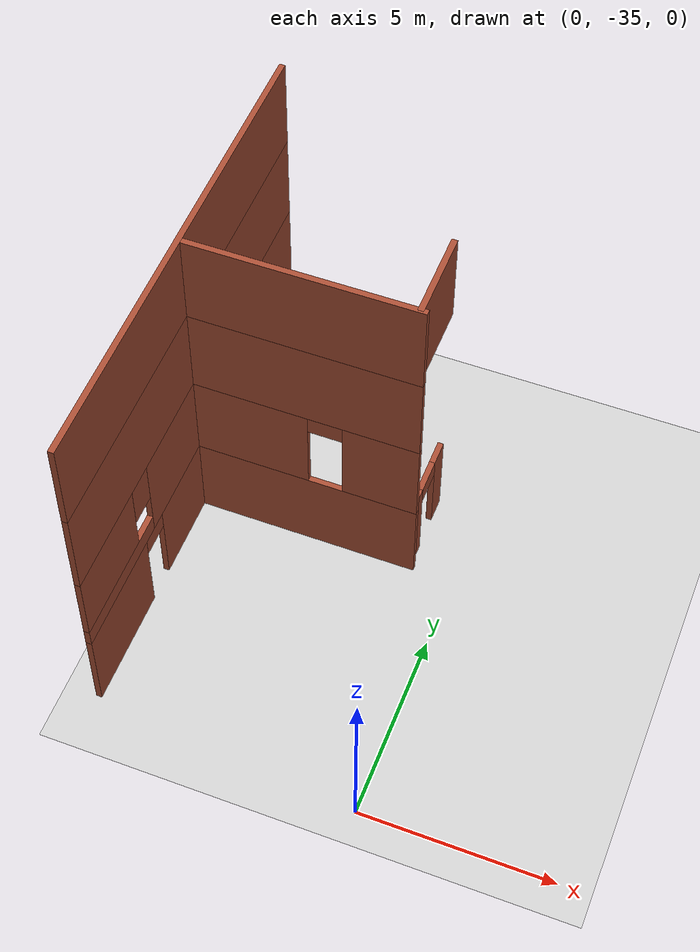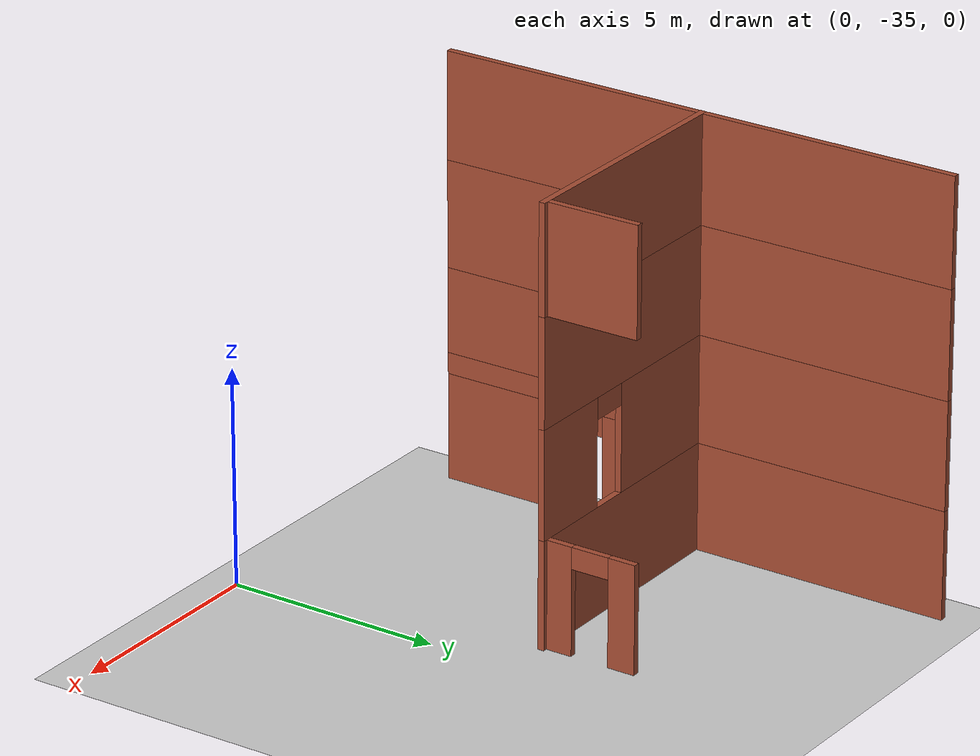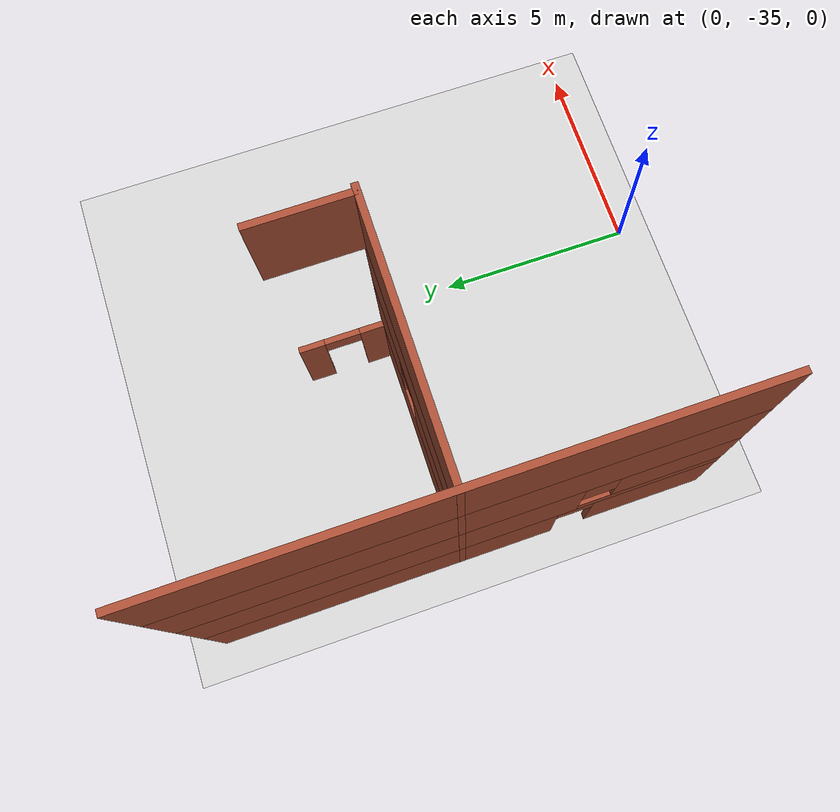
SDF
<sdf version="1.7">
 <world name="default">
  <model name="ground_plane">
   <static>1</static>
   <link name="link">
    <collision name="collision">
     <geometry><plane><normal>0 0 1</normal><size>300 300</size></plane></geometry>
     <surface>
      <contact><collide_bitmask>65535</collide_bitmask></contact>
      <friction><ode><mu>100</mu><mu2>50</mu2></ode></friction>
     </surface>
    </collision>
    <visual name="visual">
     <cast_shadows>0</cast_shadows>
     <geometry><plane><normal>0 0 1</normal><size>300 300</size></plane></geometry>
     <material>
      <script><uri>file://media/materials/scripts/gazebo.material</uri><name>Gazebo/Grey</name></script>
     </material>
    </visual>
   </link>
  </model>
  <model name="Drone_House_0">
   <pose>0.722097 -29.4245 0 0 -0 0</pose>
   <link name="Wall_106">
    <collision name="Wall_106_Collision">
     <geometry><box><size>12.5 0.15 2.5</size></box></geometry>
     <pose>0 0 1.25 0 -0 0</pose>
    </collision>
    <visual name="Wall_106_Visual">
     <pose>0 0 1.25 0 -0 0</pose>
     <geometry><box><size>12.5 0.15 2.5</size></box></geometry>
     <material>
      <script><uri>file://media/materials/scripts/gazebo.material</uri><name>Gazebo/Bricks</name></script>
      <ambient>1 1 1 1</ambient>
     </material>
     <meta><layer>3</layer></meta>
    </visual>
    <pose>-7.72394 1.325 7.5 0 -0 -1.5708</pose>
   </link>
   <link name="Wall_108">
    <collision name="Wall_108_Collision">
     <geometry><box><size>6 0.15 2.5</size></box></geometry>
     <pose>0 0 1.25 0 -0 0</pose>
    </collision>
    <visual name="Wall_108_Visual">
     <pose>0 0 1.25 0 -0 0</pose>
     <geometry><box><size>6 0.15 2.5</size></box></geometry>
     <material>
      <script><uri>file://media/materials/scripts/gazebo.material</uri><name>Gazebo/Bricks</name></script>
      <ambient>1 1 1 1</ambient>
     </material>
     <meta><layer>3</layer></meta>
    </visual>
    <pose>-4.80107 1.443 7.5 0 -0 0</pose>
   </link>
   <link name="Wall_115">
    <collision name="Wall_115_Collision">
     <geometry><box><size>2.25 0.15 2.5</size></box></geometry>
     <pose>0 0 1.25 0 -0 0</pose>
    </collision>
    <visual name="Wall_115_Visual">
     <pose>0 0 1.25 0 -0 0</pose>
     <geometry><box><size>2.25 0.15 2.5</size></box></geometry>
     <material>
      <script><uri>file://media/materials/scripts/gazebo.material</uri><name>Gazebo/Bricks</name></script>
      <ambient>1 1 1 1</ambient>
     </material>
     <meta><layer>3</layer></meta>
    </visual>
    <pose>-1.97394 2.55 7.5 0 -0 -1.5708</pose>
   </link>
   <link name="Wall_16">
    <pose>-1.97394 2.55 0 0 -0 -1.5708</pose>
    <visual name="Wall_16_Visual_0">
     <pose>-0.800315 0 1.25 0 -0 0</pose>
     <geometry><box><size>0.649369 0.15 2.5</size></box></geometry>
     <material>
      <script><uri>file://media/materials/scripts/gazebo.material</uri><name>Gazebo/Bricks</name></script>
      <ambient>1 1 1 1</ambient>
     </material>
     <meta><layer>0</layer></meta>
    </visual>
    <collision name="Wall_16_Collision_0">
     <geometry><box><size>0.649369 0.15 2.5</size></box></geometry>
     <pose>-0.800315 0 1.25 0 -0 0</pose>
    </collision>
    <visual name="Wall_16_Visual_1">
     <pose>0.774685 0 1.25 0 -0 0</pose>
     <geometry><box><size>0.700631 0.15 2.5</size></box></geometry>
     <material>
      <script><uri>file://media/materials/scripts/gazebo.material</uri><name>Gazebo/Bricks</name></script>
      <ambient>1 1 1 1</ambient>
     </material>
     <meta><layer>0</layer></meta>
    </visual>
    <collision name="Wall_16_Collision_1">
     <geometry><box><size>0.700631 0.15 2.5</size></box></geometry>
     <pose>0.774685 0 1.25 0 -0 0</pose>
    </collision>
    <visual name="Wall_16_Visual_2">
     <pose>-0.025631 0 2.25 0 -0 0</pose>
     <geometry><box><size>0.9 0.15 0.5</size></box></geometry>
     <material>
      <script><uri>file://media/materials/scripts/gazebo.material</uri><name>Gazebo/Bricks</name></script>
      <ambient>1 1 1 1</ambient>
     </material>
     <meta><layer>0</layer></meta>
    </visual>
    <collision name="Wall_16_Collision_2">
     <geometry><box><size>0.9 0.15 0.5</size></box></geometry>
     <pose>-0.025631 0 2.25 0 -0 0</pose>
    </collision>
   </link>
   <link name="Wall_35">
    <pose>-7.72394 1.325 2.5 0 -0 -1.5708</pose>
    <visual name="Wall_35_Visual_0">
     <pose>-1.7824 0 1.25 0 -0 0</pose>
     <geometry><box><size>8.9352 0.15 2.5</size></box></geometry>
     <material>
      <script><uri>file://media/materials/scripts/gazebo.material</uri><name>Gazebo/Bricks</name></script>
      <ambient>1 1 1 1</ambient>
     </material>
     <meta><layer>1</layer></meta>
    </visual>
    <collision name="Wall_35_Collision_0">
     <geometry><box><size>8.9352 0.15 2.5</size></box></geometry>
     <pose>-1.7824 0 1.25 0 -0 0</pose>
    </collision>
    <visual name="Wall_35_Visual_1">
     <pose>4.4676 0 0.25 0 -0 0</pose>
     <geometry><box><size>3.5648 0.15 0.5</size></box></geometry>
     <material>
      <script><uri>file://media/materials/scripts/gazebo.material</uri><name>Gazebo/Bricks</name></script>
      <ambient>1 1 1 1</ambient>
     </material>
     <meta><layer>1</layer></meta>
    </visual>
    <collision name="Wall_35_Collision_1">
     <geometry><box><size>3.5648 0.15 0.5</size></box></geometry>
     <pose>4.4676 0 0.25 0 -0 0</pose>
    </collision>
    <visual name="Wall_35_Visual_2">
     <pose>4.8676 0 1.5 0 -0 0</pose>
     <geometry><box><size>2.7648 0.15 2</size></box></geometry>
     <material>
      <script><uri>file://media/materials/scripts/gazebo.material</uri><name>Gazebo/Bricks</name></script>
      <ambient>1 1 1 1</ambient>
     </material>
     <meta><layer>1</layer></meta>
    </visual>
    <collision name="Wall_35_Collision_2">
     <geometry><box><size>2.7648 0.15 2</size></box></geometry>
     <pose>4.8676 0 1.5 0 -0 0</pose>
    </collision>
    <visual name="Wall_35_Visual_3">
     <pose>3.0852 0 1.9 0 -0 0</pose>
     <geometry><box><size>0.8 0.15 1.2</size></box></geometry>
     <material>
      <script><uri>file://media/materials/scripts/gazebo.material</uri><name>Gazebo/Bricks</name></script>
      <ambient>1 1 1 1</ambient>
     </material>
     <meta><layer>1</layer></meta>
    </visual>
    <collision name="Wall_35_Collision_3">
     <geometry><box><size>0.8 0.15 1.2</size></box></geometry>
     <pose>3.0852 0 1.9 0 -0 0</pose>
    </collision>
   </link>
   <link name="Wall_37">
    <pose>-4.80107 1.443 2.5 0 -0 0</pose>
    <visual name="Wall_37_Visual_0">
     <pose>-1.43248 0 1.25 0 -0 0</pose>
     <geometry><box><size>3.13503 0.15 2.5</size></box></geometry>
     <material>
      <script><uri>file://media/materials/scripts/gazebo.material</uri><name>Gazebo/Bricks</name></script>
      <ambient>1 1 1 1</ambient>
     </material>
     <meta><layer>1</layer></meta>
    </visual>
    <collision name="Wall_37_Collision_0">
     <geometry><box><size>3.13503 0.15 2.5</size></box></geometry>
     <pose>-1.43248 0 1.25 0 -0 0</pose>
    </collision>
    <visual name="Wall_37_Visual_1">
     <pose>2.01752 0 1.25 0 -0 0</pose>
     <geometry><box><size>1.96497 0.15 2.5</size></box></geometry>
     <material>
      <script><uri>file://media/materials/scripts/gazebo.material</uri><name>Gazebo/Bricks</name></script>
      <ambient>1 1 1 1</ambient>
     </material>
     <meta><layer>1</layer></meta>
    </visual>
    <collision name="Wall_37_Collision_1">
     <geometry><box><size>1.96497 0.15 2.5</size></box></geometry>
     <pose>2.01752 0 1.25 0 -0 0</pose>
    </collision>
    <visual name="Wall_37_Visual_2">
     <pose>0.585032 0 2.25 0 -0 0</pose>
     <geometry><box><size>0.9 0.15 0.5</size></box></geometry>
     <material>
      <script><uri>file://media/materials/scripts/gazebo.material</uri><name>Gazebo/Bricks</name></script>
      <ambient>1 1 1 1</ambient>
     </material>
     <meta><layer>1</layer></meta>
    </visual>
    <collision name="Wall_37_Collision_2">
     <geometry><box><size>0.9 0.15 0.5</size></box></geometry>
     <pose>0.585032 0 2.25 0 -0 0</pose>
    </collision>
   </link>
   <link name="Wall_4">
    <pose>-7.72394 1.325 0 0 -0 -1.5708</pose>
    <visual name="Wall_4_Visual_0">
     <pose>-2.0069 0 1.25 0 -0 0</pose>
     <geometry><box><size>8.4862 0.15 2.5</size></box></geometry>
     <material>
      <script><uri>file://media/materials/scripts/gazebo.material</uri><name>Gazebo/Bricks</name></script>
      <ambient>1 1 1 1</ambient>
     </material>
     <meta><layer>0</layer></meta>
    </visual>
    <collision name="Wall_4_Collision_0">
     <geometry><box><size>8.4862 0.15 2.5</size></box></geometry>
     <pose>-2.0069 0 1.25 0 -0 0</pose>
    </collision>
    <visual name="Wall_4_Visual_1">
     <pose>4.6931 0 1.25 0 -0 0</pose>
     <geometry><box><size>3.1138 0.15 2.5</size></box></geometry>
     <material>
      <script><uri>file://media/materials/scripts/gazebo.material</uri><name>Gazebo/Bricks</name></script>
      <ambient>1 1 1 1</ambient>
     </material>
     <meta><layer>0</layer></meta>
    </visual>
    <collision name="Wall_4_Collision_1">
     <geometry><box><size>3.1138 0.15 2.5</size></box></geometry>
     <pose>4.6931 0 1.25 0 -0 0</pose>
    </collision>
    <visual name="Wall_4_Visual_2">
     <pose>2.6862 0 2.25 0 -0 0</pose>
     <geometry><box><size>0.9 0.15 0.5</size></box></geometry>
     <material>
      <script><uri>file://media/materials/scripts/gazebo.material</uri><name>Gazebo/Bricks</name></script>
      <ambient>1 1 1 1</ambient>
     </material>
     <meta><layer>0</layer></meta>
    </visual>
    <collision name="Wall_4_Collision_2">
     <geometry><box><size>0.9 0.15 0.5</size></box></geometry>
     <pose>2.6862 0 2.25 0 -0 0</pose>
    </collision>
   </link>
   <link name="Wall_7">
    <collision name="Wall_7_Collision">
     <geometry><box><size>6 0.15 2.5</size></box></geometry>
     <pose>0 0 1.25 0 -0 0</pose>
    </collision>
    <visual name="Wall_7_Visual">
     <pose>0 0 1.25 0 -0 0</pose>
     <geometry><box><size>6 0.15 2.5</size></box></geometry>
     <material>
      <script><uri>file://media/materials/scripts/gazebo.material</uri><name>Gazebo/Bricks</name></script>
      <ambient>1 1 1 1</ambient>
     </material>
     <meta><layer>0</layer></meta>
    </visual>
    <pose>-4.80107 1.443 0 0 -0 0</pose>
   </link>
   <link name="Wall_84">
    <collision name="Wall_84_Collision">
     <geometry><box><size>12.5 0.15 2.5</size></box></geometry>
     <pose>0 0 1.25 0 -0 0</pose>
    </collision>
    <visual name="Wall_84_Visual">
     <pose>0 0 1.25 0 -0 0</pose>
     <geometry><box><size>12.5 0.15 2.5</size></box></geometry>
     <material>
      <script><uri>file://media/materials/scripts/gazebo.material</uri><name>Gazebo/Bricks</name></script>
      <ambient>1 1 1 1</ambient>
     </material>
     <meta><layer>2</layer></meta>
    </visual>
    <pose>-7.72394 1.325 5 0 -0 -1.5708</pose>
   </link>
   <link name="Wall_86">
    <collision name="Wall_86_Collision">
     <geometry><box><size>6 0.15 2.5</size></box></geometry>
     <pose>0 0 1.25 0 -0 0</pose>
    </collision>
    <visual name="Wall_86_Visual">
     <pose>0 0 1.25 0 -0 0</pose>
     <geometry><box><size>6 0.15 2.5</size></box></geometry>
     <material>
      <script><uri>file://media/materials/scripts/gazebo.material</uri><name>Gazebo/Bricks</name></script>
      <ambient>1 1 1 1</ambient>
     </material>
     <meta><layer>2</layer></meta>
    </visual>
    <pose>-4.80107 1.443 5 0 -0 0</pose>
   </link>
   <static>1</static>
  </model>
 </world>
</sdf>
